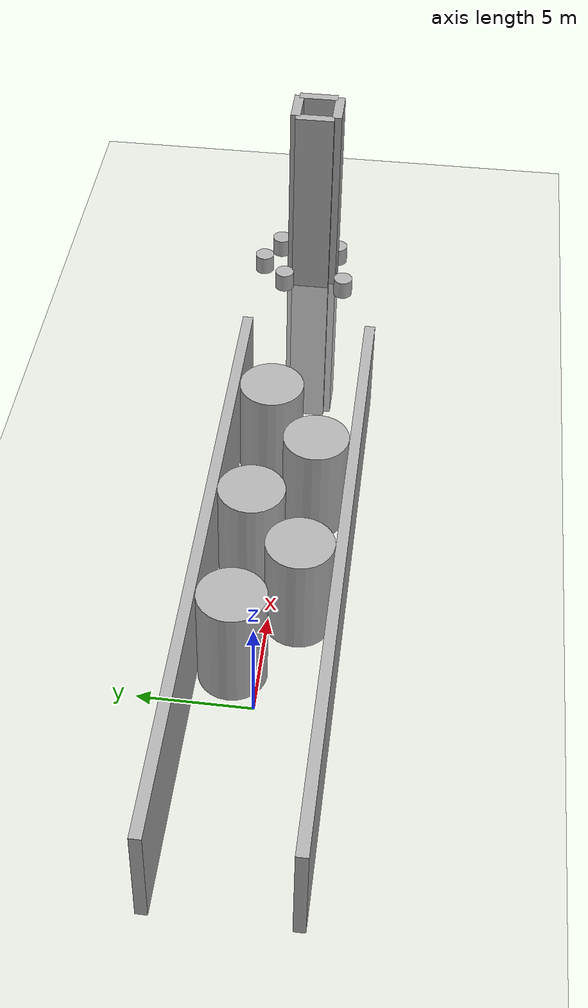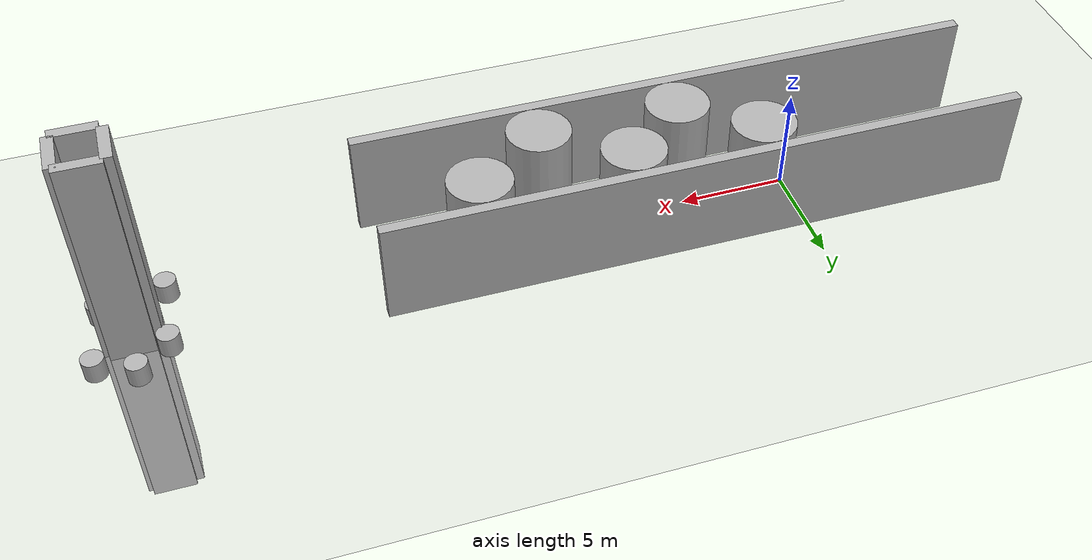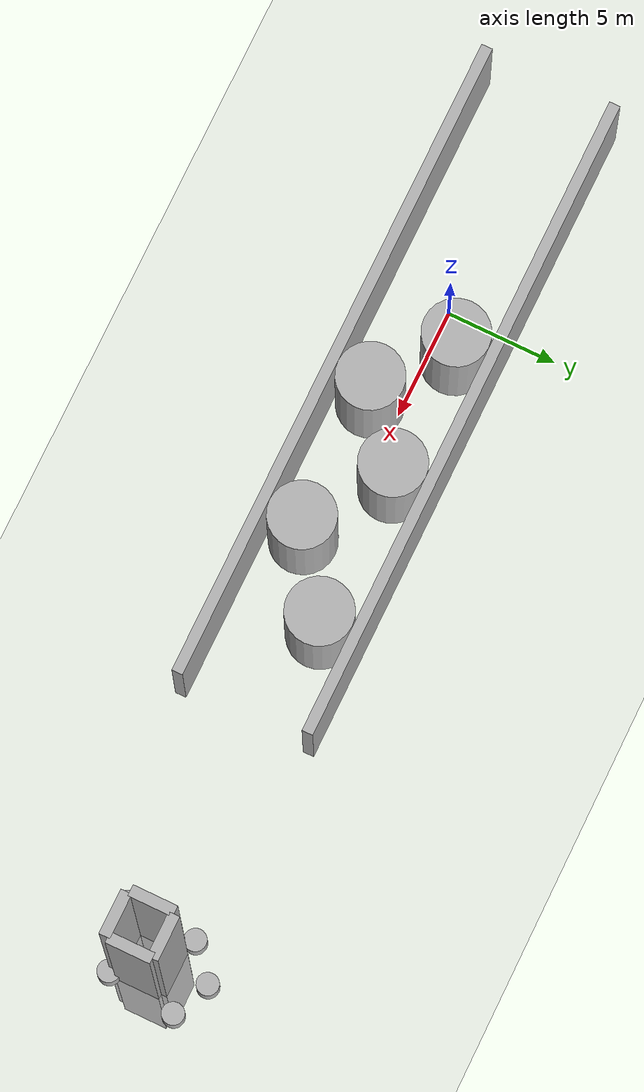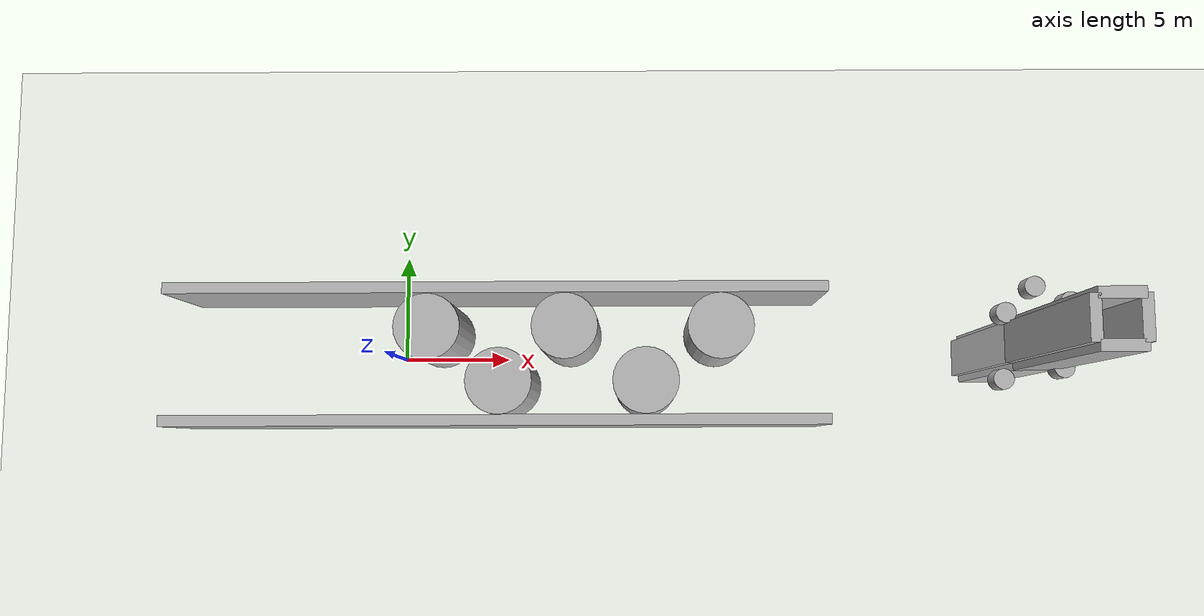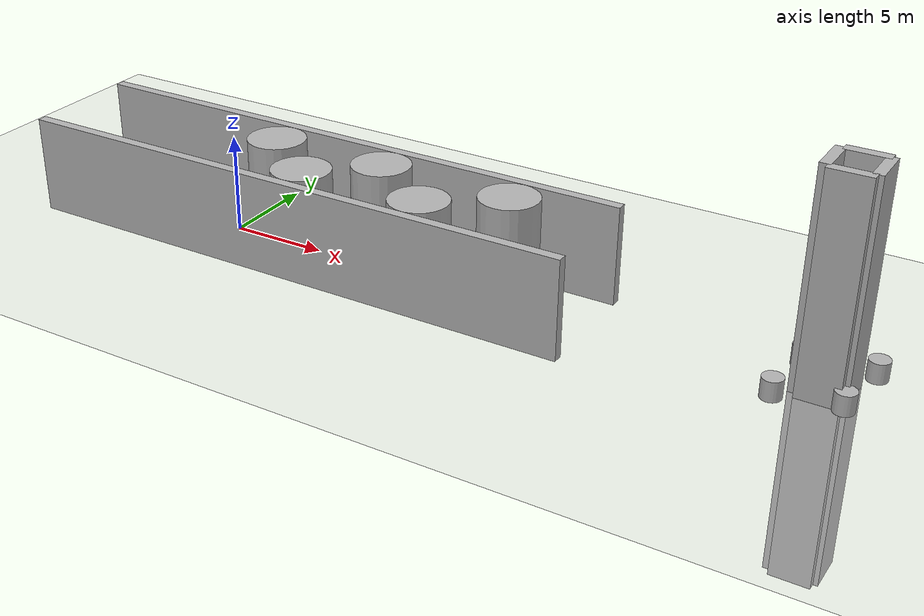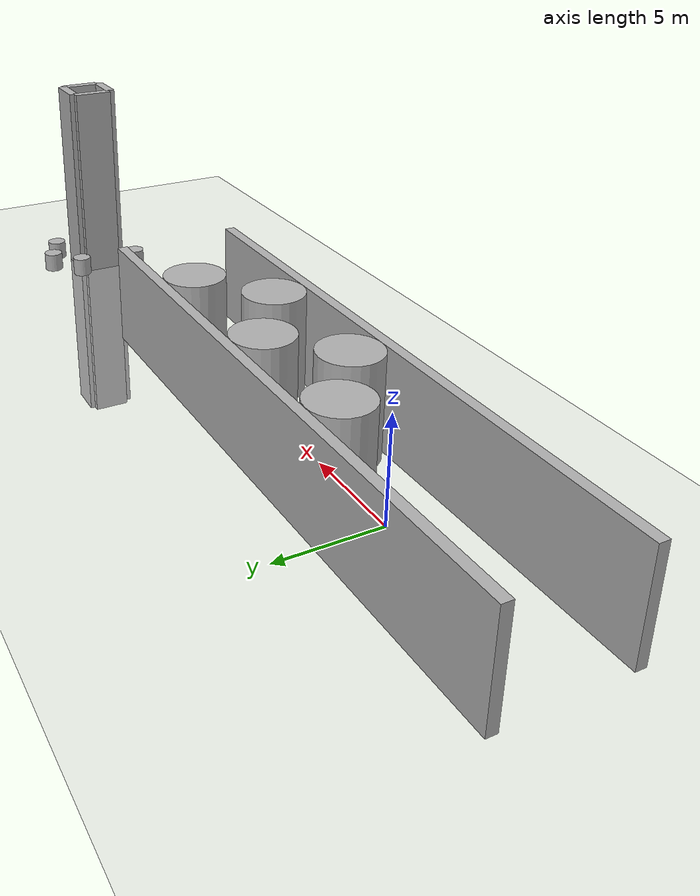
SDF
<sdf version='1.9'>
  <world name='demo'>
    <plugin name='ignition::gazebo::systems::Physics' filename='ignition-gazebo-physics-system'/>
    <plugin name='ignition::gazebo::systems::Sensors' filename='ignition-gazebo-sensors-system'>
      <render_engine>ogre2</render_engine>
    </plugin>
    <plugin name='ignition::gazebo::systems::SceneBroadcaster' filename='ignition-gazebo-scene-broadcaster-system'/>
    <plugin name='ignition::gazebo::systems::UserCommands' filename='ignition-gazebo-user-commands-system'/>
    <gravity>0 0 -9.8</gravity>
    <magnetic_field>6e-06 2.3e-05 -4.2e-05</magnetic_field>
    <atmosphere type='adiabatic'/>
    <physics type='ode'>
      <max_step_size>0.001</max_step_size>
      <real_time_factor>1</real_time_factor>
      <real_time_update_rate>1000</real_time_update_rate>
    </physics>
    <gui fullscreen='false'>
      <camera name='user_camera'>
        <track_visual>
          <name>crazyflie</name>
          <min_dist>0.02</min_dist>
          <max_dist>1</max_dist>
        </track_visual>
        <clip>
          <near>0.001</near>
          <far>1000</far>
        </clip>
      </camera>
    </gui>
    <scene>
      <ambient>0.4 0.4 0.4 1</ambient>
      <background>0.7 0.7 0.7 1</background>
      <shadows>true</shadows>
    </scene>
    <model name='ground_plane'>
      <static>true</static>
      <link name='link'>
        <collision name='collision'>
          <geometry>
            <plane>
              <normal>0 0 1</normal>
              <size>100 100</size>
            </plane>
          </geometry>
          <surface>
            <friction>
              <ode/>
            </friction>
            <bounce/>
            <contact/>
          </surface>
        </collision>
        <visual name='visual'>
          <geometry>
            <plane>
              <normal>0 0 1</normal>
              <size>100 100</size>
            </plane>
          </geometry>
          <material>
            <ambient>0.8 0.8 0.8 1</ambient>
            <diffuse>0.8 0.8 0.8 1</diffuse>
            <specular>0.8 0.8 0.8 1</specular>
          </material>
        </visual>
        <pose>0 0 0 0 -0 0</pose>
        <inertial>
          <pose>0 0 0 0 -0 0</pose>
          <mass>1</mass>
          <inertia>
            <ixx>1</ixx>
            <ixy>0</ixy>
            <ixz>0</ixz>
            <iyy>1</iyy>
            <iyz>0</iyz>
            <izz>1</izz>
          </inertia>
        </inertial>
        <enable_wind>false</enable_wind>
      </link>
      <pose>0 0 0 0 -0 0</pose>
      <self_collide>false</self_collide>
    </model>
    <model name='cylinder'>
      <pose>1.8107 1.13074 2.5 0 -0 1e-06</pose>
      <link name='cylinder_link'>
        <inertial>
          <inertia>
            <ixx>0.14580000000000001</ixx>
            <ixy>0</ixy>
            <ixz>0</ixz>
            <iyy>0.14580000000000001</iyy>
            <iyz>0</iyz>
            <izz>0.125</izz>
          </inertia>
          <mass>1</mass>
          <pose>0 0 0 0 -0 0</pose>
        </inertial>
        <collision name='cylinder_collision'>
          <geometry>
            <cylinder>
              <radius>1.5</radius>
              <length>5</length>
            </cylinder>
          </geometry>
          <surface>
            <friction>
              <ode/>
            </friction>
            <bounce/>
            <contact/>
          </surface>
        </collision>
        <visual name='cylinder_visual'>
          <geometry>
            <cylinder>
              <radius>1.5</radius>
              <length>5</length>
            </cylinder>
          </geometry>
          <material>
            <ambient>0.3 0.3 0.3 1</ambient>
            <diffuse>0.7 0.7 0.7 1</diffuse>
            <specular>1 1 1 1</specular>
          </material>
        </visual>
        <pose>0 0 0 0 -0 0</pose>
        <enable_wind>false</enable_wind>
      </link>
      <static>false</static>
      <self_collide>false</self_collide>
    </model>
    <model name='cylinder_0'>
      <pose>5.05656 -1.32108 2.5 0 0 2e-06</pose>
      <link name='cylinder_link'>
        <inertial>
          <inertia>
            <ixx>0.14580000000000001</ixx>
            <ixy>0</ixy>
            <ixz>0</ixz>
            <iyy>0.14580000000000001</iyy>
            <iyz>0</iyz>
            <izz>0.125</izz>
          </inertia>
          <mass>1</mass>
          <pose>0 0 0 0 -0 0</pose>
        </inertial>
        <collision name='cylinder_collision'>
          <geometry>
            <cylinder>
              <radius>1.5</radius>
              <length>5</length>
            </cylinder>
          </geometry>
          <surface>
            <friction>
              <ode/>
            </friction>
            <bounce/>
            <contact/>
          </surface>
        </collision>
        <visual name='cylinder_visual'>
          <geometry>
            <cylinder>
              <radius>1.5</radius>
              <length>5</length>
            </cylinder>
          </geometry>
          <material>
            <ambient>0.3 0.3 0.3 1</ambient>
            <diffuse>0.7 0.7 0.7 1</diffuse>
            <specular>1 1 1 1</specular>
          </material>
        </visual>
        <pose>0 0 0 0 -0 0</pose>
        <enable_wind>false</enable_wind>
      </link>
      <static>false</static>
      <self_collide>false</self_collide>
    </model>
    <model name='cylinder_1'>
      <pose>8.01485 1.1427 2.5 -0 0 0</pose>
      <link name='cylinder_link'>
        <inertial>
          <inertia>
            <ixx>0.14580000000000001</ixx>
            <ixy>0</ixy>
            <ixz>0</ixz>
            <iyy>0.14580000000000001</iyy>
            <iyz>0</iyz>
            <izz>0.125</izz>
          </inertia>
          <mass>1</mass>
          <pose>0 0 0 0 -0 0</pose>
        </inertial>
        <collision name='cylinder_collision'>
          <geometry>
            <cylinder>
              <radius>1.5</radius>
              <length>5</length>
            </cylinder>
          </geometry>
          <surface>
            <friction>
              <ode/>
            </friction>
            <bounce/>
            <contact/>
          </surface>
        </collision>
        <visual name='cylinder_visual'>
          <geometry>
            <cylinder>
              <radius>1.5</radius>
              <length>5</length>
            </cylinder>
          </geometry>
          <material>
            <ambient>0.3 0.3 0.3 1</ambient>
            <diffuse>0.7 0.7 0.7 1</diffuse>
            <specular>1 1 1 1</specular>
          </material>
        </visual>
        <pose>0 0 0 0 -0 0</pose>
        <enable_wind>false</enable_wind>
      </link>
      <static>false</static>
      <self_collide>false</self_collide>
    </model>
    <model name='cylinder_2'>
      <pose>11.6691 -1.31108 2.5 0 -0 0</pose>
      <link name='cylinder_link'>
        <inertial>
          <inertia>
            <ixx>0.14580000000000001</ixx>
            <ixy>0</ixy>
            <ixz>0</ixz>
            <iyy>0.14580000000000001</iyy>
            <iyz>0</iyz>
            <izz>0.125</izz>
          </inertia>
          <mass>1</mass>
          <pose>0 0 0 0 -0 0</pose>
        </inertial>
        <collision name='cylinder_collision'>
          <geometry>
            <cylinder>
              <radius>1.5</radius>
              <length>5</length>
            </cylinder>
          </geometry>
          <surface>
            <friction>
              <ode/>
            </friction>
            <bounce/>
            <contact/>
          </surface>
        </collision>
        <visual name='cylinder_visual'>
          <geometry>
            <cylinder>
              <radius>1.5</radius>
              <length>5</length>
            </cylinder>
          </geometry>
          <material>
            <ambient>0.3 0.3 0.3 1</ambient>
            <diffuse>0.7 0.7 0.7 1</diffuse>
            <specular>1 1 1 1</specular>
          </material>
        </visual>
        <pose>0 0 0 0 -0 0</pose>
        <enable_wind>false</enable_wind>
      </link>
      <static>false</static>
      <self_collide>false</self_collide>
    </model>
    <model name='box'>
      <pose>4.89317 2.8951 2.5 -0 0 -0</pose>
      <link name='box_link'>
        <inertial>
          <inertia>
            <ixx>0.16666</ixx>
            <ixy>0</ixy>
            <ixz>0</ixz>
            <iyy>0.16666</iyy>
            <iyz>0</iyz>
            <izz>0.16666</izz>
          </inertia>
          <mass>1</mass>
          <pose>0 0 0 0 -0 0</pose>
        </inertial>
        <collision name='box_collision'>
          <geometry>
            <box>
              <size>30 0.5 5</size>
            </box>
          </geometry>
          <surface>
            <friction>
              <ode/>
            </friction>
            <bounce/>
            <contact/>
          </surface>
        </collision>
        <visual name='box_visual'>
          <geometry>
            <box>
              <size>30 0.5 5</size>
            </box>
          </geometry>
          <material>
            <ambient>0.3 0.3 0.3 1</ambient>
            <diffuse>0.7 0.7 0.7 1</diffuse>
            <specular>1 1 1 1</specular>
          </material>
        </visual>
        <pose>0 0 0 0 -0 0</pose>
        <enable_wind>false</enable_wind>
      </link>
      <static>false</static>
      <self_collide>false</self_collide>
    </model>
    <model name='box_0'>
      <pose>4.93074 -3.07107 2.5 0 -0 -5e-05</pose>
      <link name='box_link'>
        <inertial>
          <inertia>
            <ixx>0.16666</ixx>
            <ixy>0</ixy>
            <ixz>0</ixz>
            <iyy>0.16666</iyy>
            <iyz>0</iyz>
            <izz>0.16666</izz>
          </inertia>
          <mass>1</mass>
          <pose>0 0 0 0 -0 0</pose>
        </inertial>
        <collision name='box_collision'>
          <geometry>
            <box>
              <size>30 0.5 5</size>
            </box>
          </geometry>
          <surface>
            <friction>
              <ode/>
            </friction>
            <bounce/>
            <contact/>
          </surface>
        </collision>
        <visual name='box_visual'>
          <geometry>
            <box>
              <size>30 0.5 5</size>
            </box>
          </geometry>
          <material>
            <ambient>0.3 0.3 0.3 1</ambient>
            <diffuse>0.7 0.7 0.7 1</diffuse>
            <specular>1 1 1 1</specular>
          </material>
        </visual>
        <pose>0 0 0 0 -0 0</pose>
        <enable_wind>false</enable_wind>
      </link>
      <static>false</static>
      <self_collide>false</self_collide>
    </model>
    <model name='cylinder_2_1'>
      <pose>15.0474 1.12332 2.5 -0 -0 -0</pose>
      <link name='cylinder_link'>
        <inertial>
          <inertia>
            <ixx>0.14580000000000001</ixx>
            <ixy>0</ixy>
            <ixz>0</ixz>
            <iyy>0.14580000000000001</iyy>
            <iyz>0</iyz>
            <izz>0.125</izz>
          </inertia>
          <mass>1</mass>
          <pose>0 0 0 0 -0 0</pose>
        </inertial>
        <collision name='cylinder_collision'>
          <geometry>
            <cylinder>
              <radius>1.5</radius>
              <length>5</length>
            </cylinder>
          </geometry>
          <surface>
            <friction>
              <ode/>
            </friction>
            <bounce/>
            <contact/>
          </surface>
        </collision>
        <visual name='cylinder_visual'>
          <geometry>
            <cylinder>
              <radius>1.5</radius>
              <length>5</length>
            </cylinder>
          </geometry>
          <material>
            <ambient>0.3 0.3 0.3 1</ambient>
            <diffuse>0.7 0.7 0.7 1</diffuse>
            <specular>1 1 1 1</specular>
          </material>
        </visual>
        <pose>0 0 0 0 -0 0</pose>
        <enable_wind>false</enable_wind>
      </link>
      <static>false</static>
      <self_collide>false</self_collide>
    </model>
    <model name='box_1'>
      <pose>30.7252 1.78081 0.5 0 0 -0</pose>
      <link name='box_link'>
        <inertial>
          <inertia>
            <ixx>0.16666</ixx>
            <ixy>0</ixy>
            <ixz>0</ixz>
            <iyy>0.16666</iyy>
            <iyz>0</iyz>
            <izz>0.16666</izz>
          </inertia>
          <mass>1</mass>
          <pose>0 0 0 0 -0 0</pose>
        </inertial>
        <collision name='box_collision'>
          <geometry>
            <box>
              <size>2 0.5 20</size>
            </box>
          </geometry>
          <surface>
            <friction>
              <ode/>
            </friction>
            <bounce/>
            <contact/>
          </surface>
        </collision>
        <visual name='box_visual'>
          <geometry>
            <box>
              <size>2 0.5 20</size>
            </box>
          </geometry>
          <material>
            <ambient>0.3 0.3 0.3 1</ambient>
            <diffuse>0.7 0.7 0.7 1</diffuse>
            <specular>1 1 1 1</specular>
          </material>
        </visual>
        <pose>0 0 0 0 -0 0</pose>
        <enable_wind>false</enable_wind>
      </link>
      <static>false</static>
      <self_collide>false</self_collide>
    </model>
    <model name='box_2'>
      <pose>31.7078 0.772959 0.5 -0 -0 0</pose>
      <link name='box_link'>
        <inertial>
          <inertia>
            <ixx>0.16666</ixx>
            <ixy>0</ixy>
            <ixz>0</ixz>
            <iyy>0.16666</iyy>
            <iyz>0</iyz>
            <izz>0.16666</izz>
          </inertia>
          <mass>1</mass>
          <pose>0 0 0 0 -0 0</pose>
        </inertial>
        <collision name='box_collision'>
          <geometry>
            <box>
              <size>0.5 2 20</size>
            </box>
          </geometry>
          <surface>
            <friction>
              <ode/>
            </friction>
            <bounce/>
            <contact/>
          </surface>
        </collision>
        <visual name='box_visual'>
          <geometry>
            <box>
              <size>0.5 2 20</size>
            </box>
          </geometry>
          <material>
            <ambient>0.3 0.3 0.3 1</ambient>
            <diffuse>0.7 0.7 0.7 1</diffuse>
            <specular>1 1 1 1</specular>
          </material>
        </visual>
        <pose>0 0 0 0 -0 0</pose>
        <enable_wind>false</enable_wind>
      </link>
      <static>false</static>
      <self_collide>false</self_collide>
    </model>
    <model name='box_3'>
      <pose>30.7339 -0.354457 0.5 0 0 -0</pose>
      <link name='box_link'>
        <inertial>
          <inertia>
            <ixx>0.16666</ixx>
            <ixy>0</ixy>
            <ixz>0</ixz>
            <iyy>0.16666</iyy>
            <iyz>0</iyz>
            <izz>0.16666</izz>
          </inertia>
          <mass>1</mass>
          <pose>0 0 0 0 -0 0</pose>
        </inertial>
        <collision name='box_collision'>
          <geometry>
            <box>
              <size>2 0.5 20</size>
            </box>
          </geometry>
          <surface>
            <friction>
              <ode/>
            </friction>
            <bounce/>
            <contact/>
          </surface>
        </collision>
        <visual name='box_visual'>
          <geometry>
            <box>
              <size>2 0.5 20</size>
            </box>
          </geometry>
          <material>
            <ambient>0.3 0.3 0.3 1</ambient>
            <diffuse>0.7 0.7 0.7 1</diffuse>
            <specular>1 1 1 1</specular>
          </material>
        </visual>
        <pose>0 0 0 0 -0 0</pose>
        <enable_wind>false</enable_wind>
      </link>
      <static>false</static>
      <self_collide>false</self_collide>
    </model>
    <model name='box_4'>
      <pose>29.6136 0.762123 0.5 -0 -0 0</pose>
      <link name='box_link'>
        <inertial>
          <inertia>
            <ixx>0.16666</ixx>
            <ixy>0</ixy>
            <ixz>0</ixz>
            <iyy>0.16666</iyy>
            <iyz>0</iyz>
            <izz>0.16666</izz>
          </inertia>
          <mass>1</mass>
          <pose>0 0 0 0 -0 0</pose>
        </inertial>
        <collision name='box_collision'>
          <geometry>
            <box>
              <size>0.5 2 20</size>
            </box>
          </geometry>
          <surface>
            <friction>
              <ode/>
            </friction>
            <bounce/>
            <contact/>
          </surface>
        </collision>
        <visual name='box_visual'>
          <geometry>
            <box>
              <size>0.5 2 20</size>
            </box>
          </geometry>
          <material>
            <ambient>0.3 0.3 0.3 1</ambient>
            <diffuse>0.7 0.7 0.7 1</diffuse>
            <specular>1 1 1 1</specular>
          </material>
        </visual>
        <pose>0 0 0 0 -0 0</pose>
        <enable_wind>false</enable_wind>
      </link>
      <static>false</static>
      <self_collide>false</self_collide>
    </model>
    <model name='cylinder_3'>
      <pose>31.8989 -0.545873 0.499999 0 0 0</pose>
      <link name='cylinder_link'>
        <inertial>
          <inertia>
            <ixx>0.14580000000000001</ixx>
            <ixy>0</ixy>
            <ixz>0</ixz>
            <iyy>0.14580000000000001</iyy>
            <iyz>0</iyz>
            <izz>0.125</izz>
          </inertia>
          <mass>1</mass>
          <pose>0 0 0 0 -0 0</pose>
        </inertial>
        <collision name='cylinder_collision'>
          <geometry>
            <cylinder>
              <radius>0.5</radius>
              <length>1</length>
            </cylinder>
          </geometry>
          <surface>
            <friction>
              <ode/>
            </friction>
            <bounce/>
            <contact/>
          </surface>
        </collision>
        <visual name='cylinder_visual'>
          <geometry>
            <cylinder>
              <radius>0.5</radius>
              <length>1</length>
            </cylinder>
          </geometry>
          <material>
            <ambient>0.3 0.3 0.3 1</ambient>
            <diffuse>0.7 0.7 0.7 1</diffuse>
            <specular>1 1 1 1</specular>
          </material>
        </visual>
        <pose>0 0 0 0 -0 0</pose>
        <enable_wind>false</enable_wind>
      </link>
      <static>true</static>
      <self_collide>false</self_collide>
    </model>
    <model name='cylinder_4'>
      <pose>32.3414 2.6543 0.499999 -0 0 0</pose>
      <link name='cylinder_link'>
        <inertial>
          <inertia>
            <ixx>0.14580000000000001</ixx>
            <ixy>0</ixy>
            <ixz>0</ixz>
            <iyy>0.14580000000000001</iyy>
            <iyz>0</iyz>
            <izz>0.125</izz>
          </inertia>
          <mass>1</mass>
          <pose>0 0 0 0 -0 0</pose>
        </inertial>
        <collision name='cylinder_collision'>
          <geometry>
            <cylinder>
              <radius>0.5</radius>
              <length>1</length>
            </cylinder>
          </geometry>
          <surface>
            <friction>
              <ode/>
            </friction>
            <bounce/>
            <contact/>
          </surface>
        </collision>
        <visual name='cylinder_visual'>
          <geometry>
            <cylinder>
              <radius>0.5</radius>
              <length>1</length>
            </cylinder>
          </geometry>
          <material>
            <ambient>0.3 0.3 0.3 1</ambient>
            <diffuse>0.7 0.7 0.7 1</diffuse>
            <specular>1 1 1 1</specular>
          </material>
        </visual>
        <pose>0 0 0 0 -0 0</pose>
        <enable_wind>false</enable_wind>
      </link>
      <static>true</static>
      <self_collide>false</self_collide>
    </model>
    <model name='cylinder_5'>
      <pose>29.1685 2.14279 0.499999 -0 0 -0</pose>
      <link name='cylinder_link'>
        <inertial>
          <inertia>
            <ixx>0.14580000000000001</ixx>
            <ixy>0</ixy>
            <ixz>0</ixz>
            <iyy>0.14580000000000001</iyy>
            <iyz>0</iyz>
            <izz>0.125</izz>
          </inertia>
          <mass>1</mass>
          <pose>0 0 0 0 -0 0</pose>
        </inertial>
        <collision name='cylinder_collision'>
          <geometry>
            <cylinder>
              <radius>0.5</radius>
              <length>1</length>
            </cylinder>
          </geometry>
          <surface>
            <friction>
              <ode/>
            </friction>
            <bounce/>
            <contact/>
          </surface>
        </collision>
        <visual name='cylinder_visual'>
          <geometry>
            <cylinder>
              <radius>0.5</radius>
              <length>1</length>
            </cylinder>
          </geometry>
          <material>
            <ambient>0.3 0.3 0.3 1</ambient>
            <diffuse>0.7 0.7 0.7 1</diffuse>
            <specular>1 1 1 1</specular>
          </material>
        </visual>
        <pose>0 0 0 0 -0 0</pose>
        <enable_wind>false</enable_wind>
      </link>
      <static>true</static>
      <self_collide>false</self_collide>
    </model>
    <model name='cylinder_6'>
      <pose>28.9455 -1.09096 0.499999 0 0 0</pose>
      <link name='cylinder_link'>
        <inertial>
          <inertia>
            <ixx>0.14580000000000001</ixx>
            <ixy>0</ixy>
            <ixz>0</ixz>
            <iyy>0.14580000000000001</iyy>
            <iyz>0</iyz>
            <izz>0.125</izz>
          </inertia>
          <mass>1</mass>
          <pose>0 0 0 0 -0 0</pose>
        </inertial>
        <collision name='cylinder_collision'>
          <geometry>
            <cylinder>
              <radius>0.5</radius>
              <length>1</length>
            </cylinder>
          </geometry>
          <surface>
            <friction>
              <ode/>
            </friction>
            <bounce/>
            <contact/>
          </surface>
        </collision>
        <visual name='cylinder_visual'>
          <geometry>
            <cylinder>
              <radius>0.5</radius>
              <length>1</length>
            </cylinder>
          </geometry>
          <material>
            <ambient>0.3 0.3 0.3 1</ambient>
            <diffuse>0.7 0.7 0.7 1</diffuse>
            <specular>1 1 1 1</specular>
          </material>
        </visual>
        <pose>0 0 0 0 -0 0</pose>
        <enable_wind>false</enable_wind>
      </link>
      <static>true</static>
      <self_collide>false</self_collide>
    </model>
    <model name='cylinder_7'>
      <pose>30.6131 3.41672 0.499999 0 0 0</pose>
      <link name='cylinder_link'>
        <inertial>
          <inertia>
            <ixx>0.14580000000000001</ixx>
            <ixy>0</ixy>
            <ixz>0</ixz>
            <iyy>0.14580000000000001</iyy>
            <iyz>0</iyz>
            <izz>0.125</izz>
          </inertia>
          <mass>1</mass>
          <pose>0 0 0 0 -0 0</pose>
        </inertial>
        <collision name='cylinder_collision'>
          <geometry>
            <cylinder>
              <radius>0.5</radius>
              <length>1</length>
            </cylinder>
          </geometry>
          <surface>
            <friction>
              <ode/>
            </friction>
            <bounce/>
            <contact/>
          </surface>
        </collision>
        <visual name='cylinder_visual'>
          <geometry>
            <cylinder>
              <radius>0.5</radius>
              <length>1</length>
            </cylinder>
          </geometry>
          <material>
            <ambient>0.3 0.3 0.3 1</ambient>
            <diffuse>0.7 0.7 0.7 1</diffuse>
            <specular>1 1 1 1</specular>
          </material>
        </visual>
        <pose>0 0 0 0 -0 0</pose>
        <enable_wind>false</enable_wind>
      </link>
      <static>true</static>
      <self_collide>false</self_collide>
    </model>
    <light name='sun' type='directional'>
      <pose>0 0 10 0 -0 0</pose>
      <cast_shadows>true</cast_shadows>
      <intensity>1</intensity>
      <direction>-0.5 0.1 -0.9</direction>
      <diffuse>1 1 1 1</diffuse>
      <specular>0.1 0.1 0.1 1</specular>
      <attenuation>
        <range>10</range>
        <linear>1</linear>
        <constant>1</constant>
        <quadratic>0</quadratic>
      </attenuation>
      <spot>
        <inner_angle>0</inner_angle>
        <outer_angle>0</outer_angle>
        <falloff>0</falloff>
      </spot>
    </light>
  </world>
</sdf>
